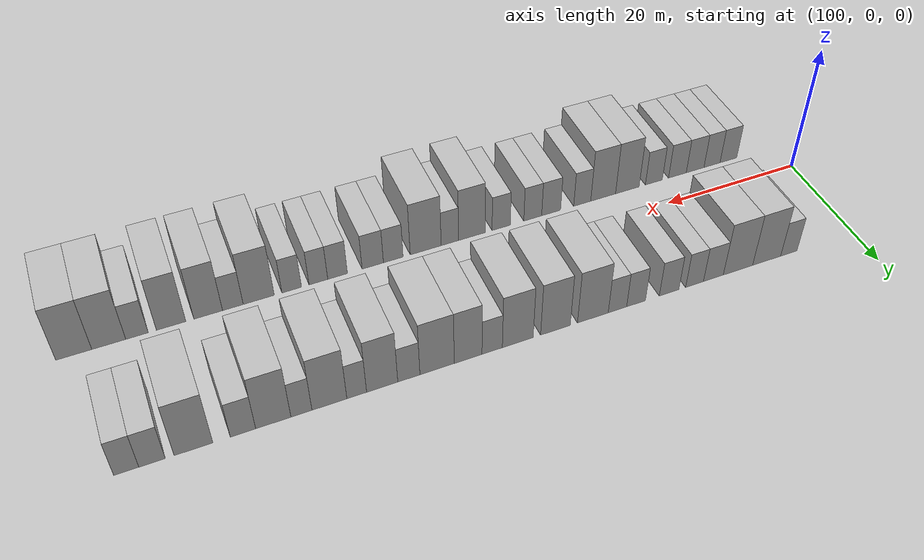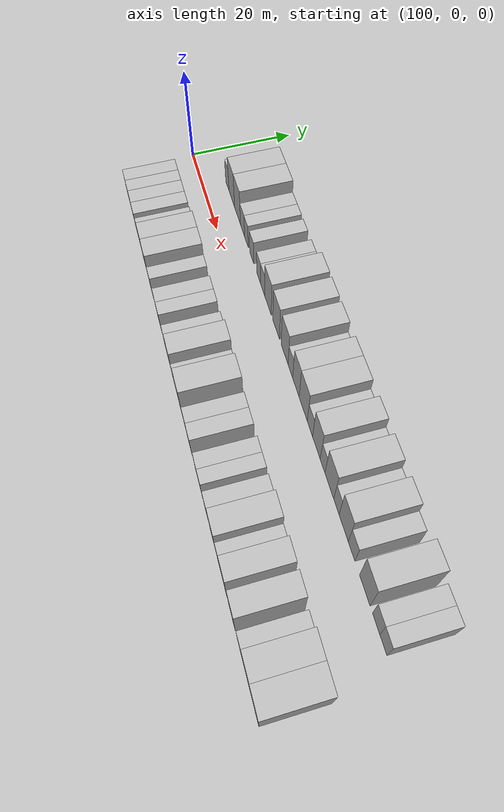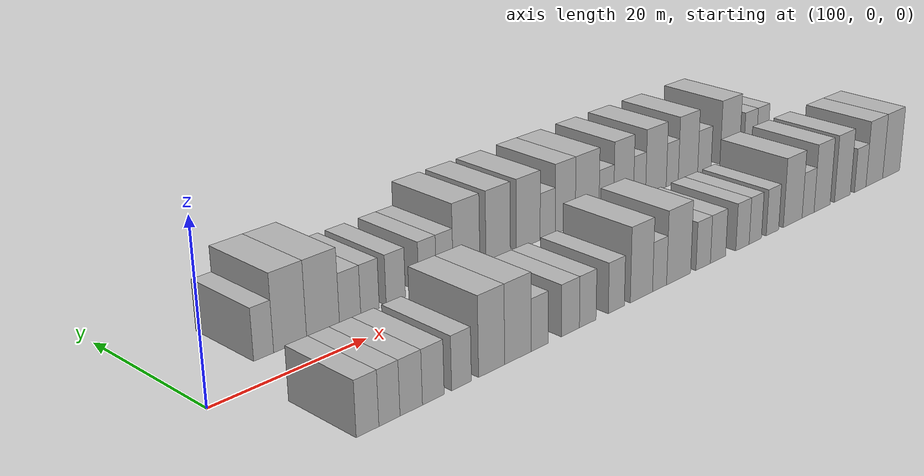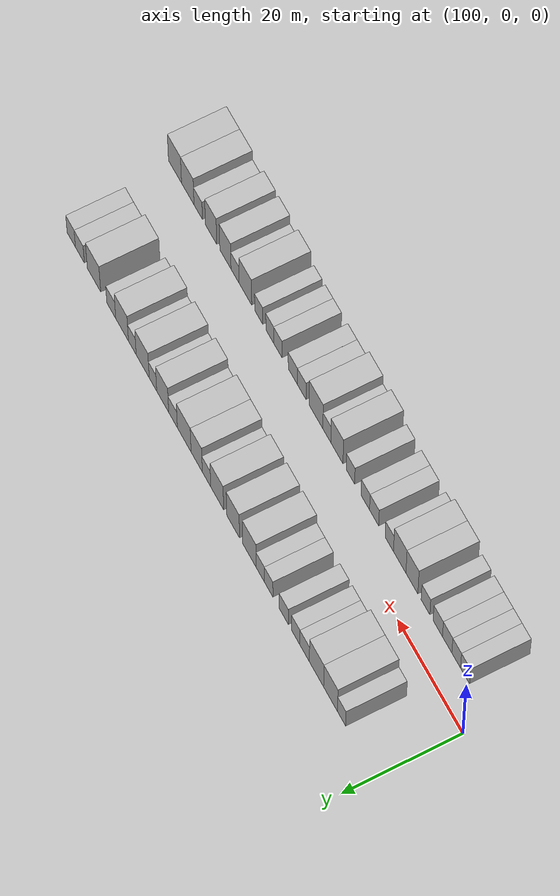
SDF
<sdf version="1.6">
 <world name="default">
  <model name="building_25">
   <static>1</static>
   <pose>110.1495 9.5000 0 0.000000 0.000000 1.570796</pose>
   <link name="link">
    <pose>0 0 3.00 0 0 0</pose>
    <collision name="collision"><geometry><box><size>10.0000 2.5376 6.0000</size></box></geometry></collision>
    <visual name="visual">
     <cast_shadows>0</cast_shadows>
     <geometry><box><size>10.0000 2.5376 6.0000</size></box></geometry>
     <material>
      <script>
       <uri>model://HANNAS_wall/materials/scripts</uri>
       <uri>model://HANNAS_wall/materials/textures</uri>
       <name>vrc/HANNAS_wall</name>
      </script>
     </material>
    </visual>
   </link>
  </model>
  <model name="building_26">
   <static>1</static>
   <pose>113.5669 9.5000 0 0.000000 0.000000 1.570796</pose>
   <link name="link">
    <pose>0 0 4.50 0 0 0</pose>
    <collision name="collision"><geometry><box><size>10.0000 4.2973 9.0000</size></box></geometry></collision>
    <visual name="visual">
     <cast_shadows>0</cast_shadows>
     <geometry><box><size>10.0000 4.2973 9.0000</size></box></geometry>
     <material>
      <script>
       <uri>model://HANNAS_wall/materials/scripts</uri>
       <uri>model://HANNAS_wall/materials/textures</uri>
       <name>vrc/HANNAS_wall</name>
      </script>
     </material>
    </visual>
   </link>
  </model>
  <model name="building_27">
   <static>1</static>
   <pose>117.9323 9.5000 0 0.000000 0.000000 1.570796</pose>
   <link name="link">
    <pose>0 0 4.50 0 0 0</pose>
    <collision name="collision"><geometry><box><size>10.0000 4.4335 9.0000</size></box></geometry></collision>
    <visual name="visual">
     <cast_shadows>0</cast_shadows>
     <geometry><box><size>10.0000 4.4335 9.0000</size></box></geometry>
     <material>
      <script>
       <uri>model://HANNAS_wall/materials/scripts</uri>
       <uri>model://HANNAS_wall/materials/textures</uri>
       <name>vrc/HANNAS_wall</name>
      </script>
     </material>
    </visual>
   </link>
  </model>
  <model name="building_28">
   <static>1</static>
   <pose>121.6269 9.5000 0 0.000000 0.000000 1.570796</pose>
   <link name="link">
    <pose>0 0 3.00 0 0 0</pose>
    <collision name="collision"><geometry><box><size>10.0000 2.9556 6.0000</size></box></geometry></collision>
    <visual name="visual">
     <cast_shadows>0</cast_shadows>
     <geometry><box><size>10.0000 2.9556 6.0000</size></box></geometry>
     <material>
      <script>
       <uri>model://HANNAS_wall/materials/scripts</uri>
       <uri>model://HANNAS_wall/materials/textures</uri>
       <name>vrc/HANNAS_wall</name>
      </script>
     </material>
    </visual>
   </link>
  </model>
  <model name="building_29">
   <static>1</static>
   <pose>124.4166 9.5000 0 0.000000 0.000000 1.570796</pose>
   <link name="link">
    <pose>0 0 3.00 0 0 0</pose>
    <collision name="collision"><geometry><box><size>10.0000 2.6238 6.0000</size></box></geometry></collision>
    <visual name="visual">
     <cast_shadows>0</cast_shadows>
     <geometry><box><size>10.0000 2.6238 6.0000</size></box></geometry>
     <material>
      <script>
       <uri>model://HANNAS_wall/materials/scripts</uri>
       <uri>model://HANNAS_wall/materials/textures</uri>
       <name>vrc/HANNAS_wall</name>
      </script>
     </material>
    </visual>
   </link>
  </model>
  <model name="building_30">
   <static>1</static>
   <pose>128.1461 9.5000 0 0.000000 0.000000 1.570796</pose>
   <link name="link">
    <pose>0 0 3.00 0 0 0</pose>
    <collision name="collision"><geometry><box><size>10.0000 2.8352 6.0000</size></box></geometry></collision>
    <visual name="visual">
     <cast_shadows>0</cast_shadows>
     <geometry><box><size>10.0000 2.8352 6.0000</size></box></geometry>
     <material>
      <script>
       <uri>model://HANNAS_wall/materials/scripts</uri>
       <uri>model://HANNAS_wall/materials/textures</uri>
       <name>vrc/HANNAS_wall</name>
      </script>
     </material>
    </visual>
   </link>
  </model>
  <model name="building_31">
   <static>1</static>
   <pose>132.9015 9.5000 0 0.000000 0.000000 1.570796</pose>
   <link name="link">
    <pose>0 0 3.00 0 0 0</pose>
    <collision name="collision"><geometry><box><size>10.0000 2.6755 6.0000</size></box></geometry></collision>
    <visual name="visual">
     <cast_shadows>0</cast_shadows>
     <geometry><box><size>10.0000 2.6755 6.0000</size></box></geometry>
     <material>
      <script>
       <uri>model://HANNAS_wall/materials/scripts</uri>
       <uri>model://HANNAS_wall/materials/textures</uri>
       <name>vrc/HANNAS_wall</name>
      </script>
     </material>
    </visual>
   </link>
  </model>
  <model name="building_32">
   <static>1</static>
   <pose>135.5398 9.5000 0 0.000000 0.000000 1.570796</pose>
   <link name="link">
    <pose>0 0 3.00 0 0 0</pose>
    <collision name="collision"><geometry><box><size>10.0000 2.6013 6.0000</size></box></geometry></collision>
    <visual name="visual">
     <cast_shadows>0</cast_shadows>
     <geometry><box><size>10.0000 2.6013 6.0000</size></box></geometry>
     <material>
      <script>
       <uri>model://HANNAS_wall/materials/scripts</uri>
       <uri>model://HANNAS_wall/materials/textures</uri>
       <name>vrc/HANNAS_wall</name>
      </script>
     </material>
    </visual>
   </link>
  </model>
  <model name="building_33">
   <static>1</static>
   <pose>138.9827 9.5000 0 0.000000 0.000000 1.570796</pose>
   <link name="link">
    <pose>0 0 4.50 0 0 0</pose>
    <collision name="collision"><geometry><box><size>10.0000 4.2845 9.0000</size></box></geometry></collision>
    <visual name="visual">
     <cast_shadows>0</cast_shadows>
     <geometry><box><size>10.0000 4.2845 9.0000</size></box></geometry>
     <material>
      <script>
       <uri>model://HANNAS_wall/materials/scripts</uri>
       <uri>model://HANNAS_wall/materials/textures</uri>
       <name>vrc/HANNAS_wall</name>
      </script>
     </material>
    </visual>
   </link>
  </model>
  <model name="building_34">
   <static>1</static>
   <pose>144.1502 9.5000 0 0.000000 0.000000 1.570796</pose>
   <link name="link">
    <pose>0 0 4.50 0 0 0</pose>
    <collision name="collision"><geometry><box><size>10.0000 4.0504 9.0000</size></box></geometry></collision>
    <visual name="visual">
     <cast_shadows>0</cast_shadows>
     <geometry><box><size>10.0000 4.0504 9.0000</size></box></geometry>
     <material>
      <script>
       <uri>model://HANNAS_wall/materials/scripts</uri>
       <uri>model://HANNAS_wall/materials/textures</uri>
       <name>vrc/HANNAS_wall</name>
      </script>
     </material>
    </visual>
   </link>
  </model>
  <model name="building_35">
   <static>1</static>
   <pose>149.2400 9.5000 0 0.000000 0.000000 1.570796</pose>
   <link name="link">
    <pose>0 0 4.50 0 0 0</pose>
    <collision name="collision"><geometry><box><size>10.0000 4.1292 9.0000</size></box></geometry></collision>
    <visual name="visual">
     <cast_shadows>0</cast_shadows>
     <geometry><box><size>10.0000 4.1292 9.0000</size></box></geometry>
     <material>
      <script>
       <uri>model://HANNAS_wall/materials/scripts</uri>
       <uri>model://HANNAS_wall/materials/textures</uri>
       <name>vrc/HANNAS_wall</name>
      </script>
     </material>
    </visual>
   </link>
  </model>
  <model name="building_36">
   <static>1</static>
   <pose>152.6476 9.5000 0 0.000000 0.000000 1.570796</pose>
   <link name="link">
    <pose>0 0 3.00 0 0 0</pose>
    <collision name="collision"><geometry><box><size>10.0000 2.6861 6.0000</size></box></geometry></collision>
    <visual name="visual">
     <cast_shadows>0</cast_shadows>
     <geometry><box><size>10.0000 2.6861 6.0000</size></box></geometry>
     <material>
      <script>
       <uri>model://HANNAS_wall/materials/scripts</uri>
       <uri>model://HANNAS_wall/materials/textures</uri>
       <name>vrc/HANNAS_wall</name>
      </script>
     </material>
    </visual>
   </link>
  </model>
  <model name="building_37">
   <static>1</static>
   <pose>155.7963 9.5000 0 0.000000 0.000000 1.570796</pose>
   <link name="link">
    <pose>0 0 4.50 0 0 0</pose>
    <collision name="collision"><geometry><box><size>10.0000 3.6113 9.0000</size></box></geometry></collision>
    <visual name="visual">
     <cast_shadows>0</cast_shadows>
     <geometry><box><size>10.0000 3.6113 9.0000</size></box></geometry>
     <material>
      <script>
       <uri>model://HANNAS_wall/materials/scripts</uri>
       <uri>model://HANNAS_wall/materials/textures</uri>
       <name>vrc/HANNAS_wall</name>
      </script>
     </material>
    </visual>
   </link>
  </model>
  <model name="building_38">
   <static>1</static>
   <pose>159.8093 9.5000 0 0.000000 0.000000 1.570796</pose>
   <link name="link">
    <pose>0 0 4.50 0 0 0</pose>
    <collision name="collision"><geometry><box><size>10.0000 4.4147 9.0000</size></box></geometry></collision>
    <visual name="visual">
     <cast_shadows>0</cast_shadows>
     <geometry><box><size>10.0000 4.4147 9.0000</size></box></geometry>
     <material>
      <script>
       <uri>model://HANNAS_wall/materials/scripts</uri>
       <uri>model://HANNAS_wall/materials/textures</uri>
       <name>vrc/HANNAS_wall</name>
      </script>
     </material>
    </visual>
   </link>
  </model>
  <model name="building_39">
   <static>1</static>
   <pose>163.4186 9.5000 0 0.000000 0.000000 1.570796</pose>
   <link name="link">
    <pose>0 0 3.00 0 0 0</pose>
    <collision name="collision"><geometry><box><size>10.0000 2.8038 6.0000</size></box></geometry></collision>
    <visual name="visual">
     <cast_shadows>0</cast_shadows>
     <geometry><box><size>10.0000 2.8038 6.0000</size></box></geometry>
     <material>
      <script>
       <uri>model://HANNAS_wall/materials/scripts</uri>
       <uri>model://HANNAS_wall/materials/textures</uri>
       <name>vrc/HANNAS_wall</name>
      </script>
     </material>
    </visual>
   </link>
  </model>
  <model name="building_40">
   <static>1</static>
   <pose>166.7655 9.5000 0 0.000000 0.000000 1.570796</pose>
   <link name="link">
    <pose>0 0 4.50 0 0 0</pose>
    <collision name="collision"><geometry><box><size>10.0000 3.8900 9.0000</size></box></geometry></collision>
    <visual name="visual">
     <cast_shadows>0</cast_shadows>
     <geometry><box><size>10.0000 3.8900 9.0000</size></box></geometry>
     <material>
      <script>
       <uri>model://HANNAS_wall/materials/scripts</uri>
       <uri>model://HANNAS_wall/materials/textures</uri>
       <name>vrc/HANNAS_wall</name>
      </script>
     </material>
    </visual>
   </link>
  </model>
  <model name="building_41">
   <static>1</static>
   <pose>169.9264 9.5000 0 0.000000 0.000000 1.570796</pose>
   <link name="link">
    <pose>0 0 3.00 0 0 0</pose>
    <collision name="collision"><geometry><box><size>10.0000 2.4317 6.0000</size></box></geometry></collision>
    <visual name="visual">
     <cast_shadows>0</cast_shadows>
     <geometry><box><size>10.0000 2.4317 6.0000</size></box></geometry>
     <material>
      <script>
       <uri>model://HANNAS_wall/materials/scripts</uri>
       <uri>model://HANNAS_wall/materials/textures</uri>
       <name>vrc/HANNAS_wall</name>
      </script>
     </material>
    </visual>
   </link>
  </model>
  <model name="building_42">
   <static>1</static>
   <pose>173.2626 9.5000 0 0.000000 0.000000 1.570796</pose>
   <link name="link">
    <pose>0 0 4.50 0 0 0</pose>
    <collision name="collision"><geometry><box><size>10.0000 4.2409 9.0000</size></box></geometry></collision>
    <visual name="visual">
     <cast_shadows>0</cast_shadows>
     <geometry><box><size>10.0000 4.2409 9.0000</size></box></geometry>
     <material>
      <script>
       <uri>model://HANNAS_wall/materials/scripts</uri>
       <uri>model://HANNAS_wall/materials/textures</uri>
       <name>vrc/HANNAS_wall</name>
      </script>
     </material>
    </visual>
   </link>
  </model>
  <model name="building_43">
   <static>1</static>
   <pose>176.6434 9.5000 0 0.000000 0.000000 1.570796</pose>
   <link name="link">
    <pose>0 0 3.00 0 0 0</pose>
    <collision name="collision"><geometry><box><size>10.0000 2.5207 6.0000</size></box></geometry></collision>
    <visual name="visual">
     <cast_shadows>0</cast_shadows>
     <geometry><box><size>10.0000 2.5207 6.0000</size></box></geometry>
     <material>
      <script>
       <uri>model://HANNAS_wall/materials/scripts</uri>
       <uri>model://HANNAS_wall/materials/textures</uri>
       <name>vrc/HANNAS_wall</name>
      </script>
     </material>
    </visual>
   </link>
  </model>
  <model name="building_44">
   <static>1</static>
   <pose>179.9894 9.5000 0 0.000000 0.000000 1.570796</pose>
   <link name="link">
    <pose>0 0 4.50 0 0 0</pose>
    <collision name="collision"><geometry><box><size>10.0000 4.1713 9.0000</size></box></geometry></collision>
    <visual name="visual">
     <cast_shadows>0</cast_shadows>
     <geometry><box><size>10.0000 4.1713 9.0000</size></box></geometry>
     <material>
      <script>
       <uri>model://HANNAS_wall/materials/scripts</uri>
       <uri>model://HANNAS_wall/materials/textures</uri>
       <name>vrc/HANNAS_wall</name>
      </script>
     </material>
    </visual>
   </link>
  </model>
  <model name="building_45">
   <static>1</static>
   <pose>183.5514 9.5000 0 0.000000 0.000000 1.570796</pose>
   <link name="link">
    <pose>0 0 3.00 0 0 0</pose>
    <collision name="collision"><geometry><box><size>10.0000 2.9525 6.0000</size></box></geometry></collision>
    <visual name="visual">
     <cast_shadows>0</cast_shadows>
     <geometry><box><size>10.0000 2.9525 6.0000</size></box></geometry>
     <material>
      <script>
       <uri>model://HANNAS_wall/materials/scripts</uri>
       <uri>model://HANNAS_wall/materials/textures</uri>
       <name>vrc/HANNAS_wall</name>
      </script>
     </material>
    </visual>
   </link>
  </model>
  <model name="building_46">
   <static>1</static>
   <pose>189.2321 9.5000 0 0.000000 0.000000 1.570796</pose>
   <link name="link">
    <pose>0 0 4.50 0 0 0</pose>
    <collision name="collision"><geometry><box><size>10.0000 4.4089 9.0000</size></box></geometry></collision>
    <visual name="visual">
     <cast_shadows>0</cast_shadows>
     <geometry><box><size>10.0000 4.4089 9.0000</size></box></geometry>
     <material>
      <script>
       <uri>model://HANNAS_wall/materials/scripts</uri>
       <uri>model://HANNAS_wall/materials/textures</uri>
       <name>vrc/HANNAS_wall</name>
      </script>
     </material>
    </visual>
   </link>
  </model>
  <model name="building_47">
   <static>1</static>
   <pose>193.9075 9.5000 0 0.000000 0.000000 1.570796</pose>
   <link name="link">
    <pose>0 0 3.00 0 0 0</pose>
    <collision name="collision"><geometry><box><size>10.0000 2.9419 6.0000</size></box></geometry></collision>
    <visual name="visual">
     <cast_shadows>0</cast_shadows>
     <geometry><box><size>10.0000 2.9419 6.0000</size></box></geometry>
     <material>
      <script>
       <uri>model://HANNAS_wall/materials/scripts</uri>
       <uri>model://HANNAS_wall/materials/textures</uri>
       <name>vrc/HANNAS_wall</name>
      </script>
     </material>
    </visual>
   </link>
  </model>
  <model name="building_48">
   <static>1</static>
   <pose>196.7634 9.5000 0 0.000000 0.000000 1.570796</pose>
   <link name="link">
    <pose>0 0 3.00 0 0 0</pose>
    <collision name="collision"><geometry><box><size>10.0000 2.7699 6.0000</size></box></geometry></collision>
    <visual name="visual">
     <cast_shadows>0</cast_shadows>
     <geometry><box><size>10.0000 2.7699 6.0000</size></box></geometry>
     <material>
      <script>
       <uri>model://HANNAS_wall/materials/scripts</uri>
       <uri>model://HANNAS_wall/materials/textures</uri>
       <name>vrc/HANNAS_wall</name>
      </script>
     </material>
    </visual>
   </link>
  </model>
  <model name="building_74">
   <static>1</static>
   <pose>107.6555 -9.5000 0 0.000000 0.000000 1.570796</pose>
   <link name="link">
    <pose>0 0 3.00 0 0 0</pose>
    <collision name="collision"><geometry><box><size>10.0000 2.7735 6.0000</size></box></geometry></collision>
    <visual name="visual">
     <cast_shadows>0</cast_shadows>
     <geometry><box><size>10.0000 2.7735 6.0000</size></box></geometry>
     <material>
      <script>
       <uri>model://HANNAS_wall/materials/scripts</uri>
       <uri>model://HANNAS_wall/materials/textures</uri>
       <name>vrc/HANNAS_wall</name>
      </script>
     </material>
    </visual>
   </link>
  </model>
  <model name="building_75">
   <static>1</static>
   <pose>110.3629 -9.5000 0 0.000000 0.000000 1.570796</pose>
   <link name="link">
    <pose>0 0 3.00 0 0 0</pose>
    <collision name="collision"><geometry><box><size>10.0000 2.6412 6.0000</size></box></geometry></collision>
    <visual name="visual">
     <cast_shadows>0</cast_shadows>
     <geometry><box><size>10.0000 2.6412 6.0000</size></box></geometry>
     <material>
      <script>
       <uri>model://HANNAS_wall/materials/scripts</uri>
       <uri>model://HANNAS_wall/materials/textures</uri>
       <name>vrc/HANNAS_wall</name>
      </script>
     </material>
    </visual>
   </link>
  </model>
  <model name="building_76">
   <static>1</static>
   <pose>113.1259 -9.5000 0 0.000000 0.000000 1.570796</pose>
   <link name="link">
    <pose>0 0 3.00 0 0 0</pose>
    <collision name="collision"><geometry><box><size>10.0000 2.8848 6.0000</size></box></geometry></collision>
    <visual name="visual">
     <cast_shadows>0</cast_shadows>
     <geometry><box><size>10.0000 2.8848 6.0000</size></box></geometry>
     <material>
      <script>
       <uri>model://HANNAS_wall/materials/scripts</uri>
       <uri>model://HANNAS_wall/materials/textures</uri>
       <name>vrc/HANNAS_wall</name>
      </script>
     </material>
    </visual>
   </link>
  </model>
  <model name="building_77">
   <static>1</static>
   <pose>116.0010 -9.5000 0 0.000000 0.000000 1.570796</pose>
   <link name="link">
    <pose>0 0 3.00 0 0 0</pose>
    <collision name="collision"><geometry><box><size>10.0000 2.8654 6.0000</size></box></geometry></collision>
    <visual name="visual">
     <cast_shadows>0</cast_shadows>
     <geometry><box><size>10.0000 2.8654 6.0000</size></box></geometry>
     <material>
      <script>
       <uri>model://HANNAS_wall/materials/scripts</uri>
       <uri>model://HANNAS_wall/materials/textures</uri>
       <name>vrc/HANNAS_wall</name>
      </script>
     </material>
    </visual>
   </link>
  </model>
  <model name="building_78">
   <static>1</static>
   <pose>119.7806 -9.5000 0 0.000000 0.000000 1.570796</pose>
   <link name="link">
    <pose>0 0 3.00 0 0 0</pose>
    <collision name="collision"><geometry><box><size>10.0000 2.6937 6.0000</size></box></geometry></collision>
    <visual name="visual">
     <cast_shadows>0</cast_shadows>
     <geometry><box><size>10.0000 2.6937 6.0000</size></box></geometry>
     <material>
      <script>
       <uri>model://HANNAS_wall/materials/scripts</uri>
       <uri>model://HANNAS_wall/materials/textures</uri>
       <name>vrc/HANNAS_wall</name>
      </script>
     </material>
    </visual>
   </link>
  </model>
  <model name="building_79">
   <static>1</static>
   <pose>123.9761 -9.5000 0 0.000000 0.000000 1.570796</pose>
   <link name="link">
    <pose>0 0 4.50 0 0 0</pose>
    <collision name="collision"><geometry><box><size>10.0000 3.6973 9.0000</size></box></geometry></collision>
    <visual name="visual">
     <cast_shadows>0</cast_shadows>
     <geometry><box><size>10.0000 3.6973 9.0000</size></box></geometry>
     <material>
      <script>
       <uri>model://HANNAS_wall/materials/scripts</uri>
       <uri>model://HANNAS_wall/materials/textures</uri>
       <name>vrc/HANNAS_wall</name>
      </script>
     </material>
    </visual>
   </link>
  </model>
  <model name="building_80">
   <static>1</static>
   <pose>127.7485 -9.5000 0 0.000000 0.000000 1.570796</pose>
   <link name="link">
    <pose>0 0 4.50 0 0 0</pose>
    <collision name="collision"><geometry><box><size>10.0000 3.8476 9.0000</size></box></geometry></collision>
    <visual name="visual">
     <cast_shadows>0</cast_shadows>
     <geometry><box><size>10.0000 3.8476 9.0000</size></box></geometry>
     <material>
      <script>
       <uri>model://HANNAS_wall/materials/scripts</uri>
       <uri>model://HANNAS_wall/materials/textures</uri>
       <name>vrc/HANNAS_wall</name>
      </script>
     </material>
    </visual>
   </link>
  </model>
  <model name="building_81">
   <static>1</static>
   <pose>130.9773 -9.5000 0 0.000000 0.000000 1.570796</pose>
   <link name="link">
    <pose>0 0 3.00 0 0 0</pose>
    <collision name="collision"><geometry><box><size>10.0000 2.6100 6.0000</size></box></geometry></collision>
    <visual name="visual">
     <cast_shadows>0</cast_shadows>
     <geometry><box><size>10.0000 2.6100 6.0000</size></box></geometry>
     <material>
      <script>
       <uri>model://HANNAS_wall/materials/scripts</uri>
       <uri>model://HANNAS_wall/materials/textures</uri>
       <name>vrc/HANNAS_wall</name>
      </script>
     </material>
    </visual>
   </link>
  </model>
  <model name="building_82">
   <static>1</static>
   <pose>135.7055 -9.5000 0 0.000000 0.000000 1.570796</pose>
   <link name="link">
    <pose>0 0 3.00 0 0 0</pose>
    <collision name="collision"><geometry><box><size>10.0000 2.8462 6.0000</size></box></geometry></collision>
    <visual name="visual">
     <cast_shadows>0</cast_shadows>
     <geometry><box><size>10.0000 2.8462 6.0000</size></box></geometry>
     <material>
      <script>
       <uri>model://HANNAS_wall/materials/scripts</uri>
       <uri>model://HANNAS_wall/materials/textures</uri>
       <name>vrc/HANNAS_wall</name>
      </script>
     </material>
    </visual>
   </link>
  </model>
  <model name="building_83">
   <static>1</static>
   <pose>138.4633 -9.5000 0 0.000000 0.000000 1.570796</pose>
   <link name="link">
    <pose>0 0 3.00 0 0 0</pose>
    <collision name="collision"><geometry><box><size>10.0000 2.6695 6.0000</size></box></geometry></collision>
    <visual name="visual">
     <cast_shadows>0</cast_shadows>
     <geometry><box><size>10.0000 2.6695 6.0000</size></box></geometry>
     <material>
      <script>
       <uri>model://HANNAS_wall/materials/scripts</uri>
       <uri>model://HANNAS_wall/materials/textures</uri>
       <name>vrc/HANNAS_wall</name>
      </script>
     </material>
    </visual>
   </link>
  </model>
  <model name="building_84">
   <static>1</static>
   <pose>143.1372 -9.5000 0 0.000000 0.000000 1.570796</pose>
   <link name="link">
    <pose>0 0 3.00 0 0 0</pose>
    <collision name="collision"><geometry><box><size>10.0000 2.6782 6.0000</size></box></geometry></collision>
    <visual name="visual">
     <cast_shadows>0</cast_shadows>
     <geometry><box><size>10.0000 2.6782 6.0000</size></box></geometry>
     <material>
      <script>
       <uri>model://HANNAS_wall/materials/scripts</uri>
       <uri>model://HANNAS_wall/materials/textures</uri>
       <name>vrc/HANNAS_wall</name>
      </script>
     </material>
    </visual>
   </link>
  </model>
  <model name="building_85">
   <static>1</static>
   <pose>147.4021 -9.5000 0 0.000000 0.000000 1.570796</pose>
   <link name="link">
    <pose>0 0 4.50 0 0 0</pose>
    <collision name="collision"><geometry><box><size>10.0000 3.8516 9.0000</size></box></geometry></collision>
    <visual name="visual">
     <cast_shadows>0</cast_shadows>
     <geometry><box><size>10.0000 3.8516 9.0000</size></box></geometry>
     <material>
      <script>
       <uri>model://HANNAS_wall/materials/scripts</uri>
       <uri>model://HANNAS_wall/materials/textures</uri>
       <name>vrc/HANNAS_wall</name>
      </script>
     </material>
    </visual>
   </link>
  </model>
  <model name="building_86">
   <static>1</static>
   <pose>150.5717 -9.5000 0 0.000000 0.000000 1.570796</pose>
   <link name="link">
    <pose>0 0 3.00 0 0 0</pose>
    <collision name="collision"><geometry><box><size>10.0000 2.4877 6.0000</size></box></geometry></collision>
    <visual name="visual">
     <cast_shadows>0</cast_shadows>
     <geometry><box><size>10.0000 2.4877 6.0000</size></box></geometry>
     <material>
      <script>
       <uri>model://HANNAS_wall/materials/scripts</uri>
       <uri>model://HANNAS_wall/materials/textures</uri>
       <name>vrc/HANNAS_wall</name>
      </script>
     </material>
    </visual>
   </link>
  </model>
  <model name="building_87">
   <static>1</static>
   <pose>154.0001 -9.5000 0 0.000000 0.000000 1.570796</pose>
   <link name="link">
    <pose>0 0 4.50 0 0 0</pose>
    <collision name="collision"><geometry><box><size>10.0000 4.3692 9.0000</size></box></geometry></collision>
    <visual name="visual">
     <cast_shadows>0</cast_shadows>
     <geometry><box><size>10.0000 4.3692 9.0000</size></box></geometry>
     <material>
      <script>
       <uri>model://HANNAS_wall/materials/scripts</uri>
       <uri>model://HANNAS_wall/materials/textures</uri>
       <name>vrc/HANNAS_wall</name>
      </script>
     </material>
    </visual>
   </link>
  </model>
  <model name="building_88">
   <static>1</static>
   <pose>158.5482 -9.5000 0 0.000000 0.000000 1.570796</pose>
   <link name="link">
    <pose>0 0 3.00 0 0 0</pose>
    <collision name="collision"><geometry><box><size>10.0000 2.7270 6.0000</size></box></geometry></collision>
    <visual name="visual">
     <cast_shadows>0</cast_shadows>
     <geometry><box><size>10.0000 2.7270 6.0000</size></box></geometry>
     <material>
      <script>
       <uri>model://HANNAS_wall/materials/scripts</uri>
       <uri>model://HANNAS_wall/materials/textures</uri>
       <name>vrc/HANNAS_wall</name>
      </script>
     </material>
    </visual>
   </link>
  </model>
  <model name="building_89">
   <static>1</static>
   <pose>161.3757 -9.5000 0 0.000000 0.000000 1.570796</pose>
   <link name="link">
    <pose>0 0 3.00 0 0 0</pose>
    <collision name="collision"><geometry><box><size>10.0000 2.9279 6.0000</size></box></geometry></collision>
    <visual name="visual">
     <cast_shadows>0</cast_shadows>
     <geometry><box><size>10.0000 2.9279 6.0000</size></box></geometry>
     <material>
      <script>
       <uri>model://HANNAS_wall/materials/scripts</uri>
       <uri>model://HANNAS_wall/materials/textures</uri>
       <name>vrc/HANNAS_wall</name>
      </script>
     </material>
    </visual>
   </link>
  </model>
  <model name="building_90">
   <static>1</static>
   <pose>166.1702 -9.5000 0 0.000000 0.000000 1.570796</pose>
   <link name="link">
    <pose>0 0 3.00 0 0 0</pose>
    <collision name="collision"><geometry><box><size>10.0000 2.6612 6.0000</size></box></geometry></collision>
    <visual name="visual">
     <cast_shadows>0</cast_shadows>
     <geometry><box><size>10.0000 2.6612 6.0000</size></box></geometry>
     <material>
      <script>
       <uri>model://HANNAS_wall/materials/scripts</uri>
       <uri>model://HANNAS_wall/materials/textures</uri>
       <name>vrc/HANNAS_wall</name>
      </script>
     </material>
    </visual>
   </link>
  </model>
  <model name="building_91">
   <static>1</static>
   <pose>168.7497 -9.5000 0 0.000000 0.000000 1.570796</pose>
   <link name="link">
    <pose>0 0 3.00 0 0 0</pose>
    <collision name="collision"><geometry><box><size>10.0000 2.4978 6.0000</size></box></geometry></collision>
    <visual name="visual">
     <cast_shadows>0</cast_shadows>
     <geometry><box><size>10.0000 2.4978 6.0000</size></box></geometry>
     <material>
      <script>
       <uri>model://HANNAS_wall/materials/scripts</uri>
       <uri>model://HANNAS_wall/materials/textures</uri>
       <name>vrc/HANNAS_wall</name>
      </script>
     </material>
    </visual>
   </link>
  </model>
  <model name="building_92">
   <static>1</static>
   <pose>172.2918 -9.5000 0 0.000000 0.000000 1.570796</pose>
   <link name="link">
    <pose>0 0 3.00 0 0 0</pose>
    <collision name="collision"><geometry><box><size>10.0000 2.5863 6.0000</size></box></geometry></collision>
    <visual name="visual">
     <cast_shadows>0</cast_shadows>
     <geometry><box><size>10.0000 2.5863 6.0000</size></box></geometry>
     <material>
      <script>
       <uri>model://HANNAS_wall/materials/scripts</uri>
       <uri>model://HANNAS_wall/materials/textures</uri>
       <name>vrc/HANNAS_wall</name>
      </script>
     </material>
    </visual>
   </link>
  </model>
  <model name="building_93">
   <static>1</static>
   <pose>176.6023 -9.5000 0 0.000000 0.000000 1.570796</pose>
   <link name="link">
    <pose>0 0 4.50 0 0 0</pose>
    <collision name="collision"><geometry><box><size>10.0000 4.0348 9.0000</size></box></geometry></collision>
    <visual name="visual">
     <cast_shadows>0</cast_shadows>
     <geometry><box><size>10.0000 4.0348 9.0000</size></box></geometry>
     <material>
      <script>
       <uri>model://HANNAS_wall/materials/scripts</uri>
       <uri>model://HANNAS_wall/materials/textures</uri>
       <name>vrc/HANNAS_wall</name>
      </script>
     </material>
    </visual>
   </link>
  </model>
  <model name="building_94">
   <static>1</static>
   <pose>179.9429 -9.5000 0 0.000000 0.000000 1.570796</pose>
   <link name="link">
    <pose>0 0 3.00 0 0 0</pose>
    <collision name="collision"><geometry><box><size>10.0000 2.6463 6.0000</size></box></geometry></collision>
    <visual name="visual">
     <cast_shadows>0</cast_shadows>
     <geometry><box><size>10.0000 2.6463 6.0000</size></box></geometry>
     <material>
      <script>
       <uri>model://HANNAS_wall/materials/scripts</uri>
       <uri>model://HANNAS_wall/materials/textures</uri>
       <name>vrc/HANNAS_wall</name>
      </script>
     </material>
    </visual>
   </link>
  </model>
  <model name="building_95">
   <static>1</static>
   <pose>183.0836 -9.5000 0 0.000000 0.000000 1.570796</pose>
   <link name="link">
    <pose>0 0 4.50 0 0 0</pose>
    <collision name="collision"><geometry><box><size>10.0000 3.6352 9.0000</size></box></geometry></collision>
    <visual name="visual">
     <cast_shadows>0</cast_shadows>
     <geometry><box><size>10.0000 3.6352 9.0000</size></box></geometry>
     <material>
      <script>
       <uri>model://HANNAS_wall/materials/scripts</uri>
       <uri>model://HANNAS_wall/materials/textures</uri>
       <name>vrc/HANNAS_wall</name>
      </script>
     </material>
    </visual>
   </link>
  </model>
  <model name="building_96">
   <static>1</static>
   <pose>187.7371 -9.5000 0 0.000000 0.000000 1.570796</pose>
   <link name="link">
    <pose>0 0 4.50 0 0 0</pose>
    <collision name="collision"><geometry><box><size>10.0000 3.6718 9.0000</size></box></geometry></collision>
    <visual name="visual">
     <cast_shadows>0</cast_shadows>
     <geometry><box><size>10.0000 3.6718 9.0000</size></box></geometry>
     <material>
      <script>
       <uri>model://HANNAS_wall/materials/scripts</uri>
       <uri>model://HANNAS_wall/materials/textures</uri>
       <name>vrc/HANNAS_wall</name>
      </script>
     </material>
    </visual>
   </link>
  </model>
  <model name="building_97">
   <static>1</static>
   <pose>191.9484 -9.5000 0 0.000000 0.000000 1.570796</pose>
   <link name="link">
    <pose>0 0 3.00 0 0 0</pose>
    <collision name="collision"><geometry><box><size>10.0000 2.7508 6.0000</size></box></geometry></collision>
    <visual name="visual">
     <cast_shadows>0</cast_shadows>
     <geometry><box><size>10.0000 2.7508 6.0000</size></box></geometry>
     <material>
      <script>
       <uri>model://HANNAS_wall/materials/scripts</uri>
       <uri>model://HANNAS_wall/materials/textures</uri>
       <name>vrc/HANNAS_wall</name>
      </script>
     </material>
    </visual>
   </link>
  </model>
  <model name="building_98">
   <static>1</static>
   <pose>195.3745 -9.5000 0 0.000000 0.000000 1.570796</pose>
   <link name="link">
    <pose>0 0 4.50 0 0 0</pose>
    <collision name="collision"><geometry><box><size>10.0000 4.1012 9.0000</size></box></geometry></collision>
    <visual name="visual">
     <cast_shadows>0</cast_shadows>
     <geometry><box><size>10.0000 4.1012 9.0000</size></box></geometry>
     <material>
      <script>
       <uri>model://HANNAS_wall/materials/scripts</uri>
       <uri>model://HANNAS_wall/materials/textures</uri>
       <name>vrc/HANNAS_wall</name>
      </script>
     </material>
    </visual>
   </link>
  </model>
  <model name="building_99">
   <static>1</static>
   <pose>199.5666 -9.5000 0 0.000000 0.000000 1.570796</pose>
   <link name="link">
    <pose>0 0 4.50 0 0 0</pose>
    <collision name="collision"><geometry><box><size>10.0000 4.2830 9.0000</size></box></geometry></collision>
    <visual name="visual">
     <cast_shadows>0</cast_shadows>
     <geometry><box><size>10.0000 4.2830 9.0000</size></box></geometry>
     <material>
      <script>
       <uri>model://HANNAS_wall/materials/scripts</uri>
       <uri>model://HANNAS_wall/materials/textures</uri>
       <name>vrc/HANNAS_wall</name>
      </script>
     </material>
    </visual>
   </link>
  </model>
 </world>
</sdf>
